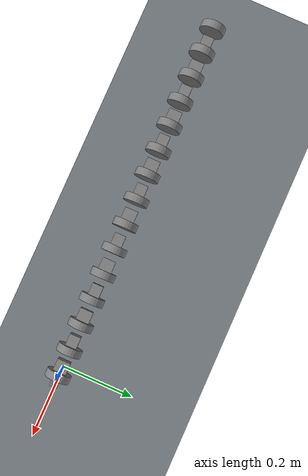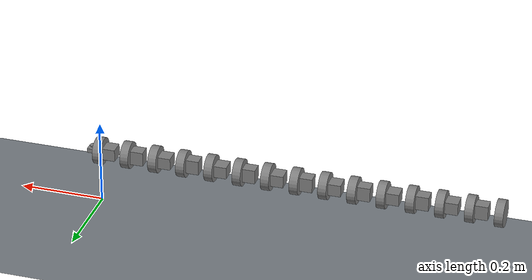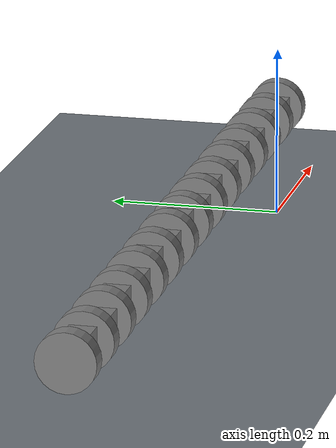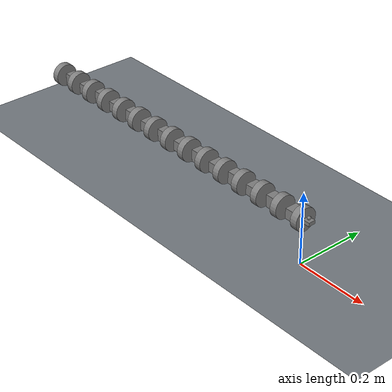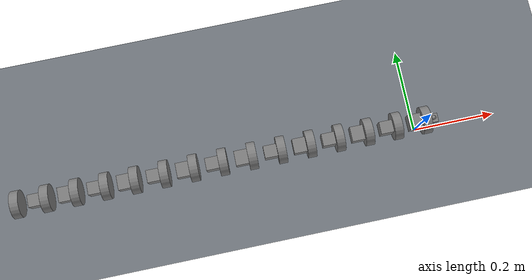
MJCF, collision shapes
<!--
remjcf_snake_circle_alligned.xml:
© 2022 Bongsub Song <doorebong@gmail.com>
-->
<mujoco model="snake_scene_v1">
    <option timestep="0.005"/>
    <size memory="100M"/>

    <include file="remjcf_snake_circle_alligned.xml"/>

    <asset>
        <texture type="skybox" builtin="gradient" rgb1=".3 .5 .7" rgb2="0 0 0" width="512" height="512"/>
        <texture name="body" type="cube" builtin="flat" mark="cross" width="128" height="128"
                 rgb1="0.8 0.6 0.4" rgb2="0.8 0.6 0.4" markrgb="1 1 1" random="0.01"/>
        <material name="body" texture="body" texuniform="true" rgba="0.8 0.6 .4 1"/>
        <texture name="grid" type="2d" builtin="checker" width="512" height="512" rgb1=".1 .2 .3" rgb2=".2 .3 .4"/>
        <material name="grid" texture="grid" texrepeat="1 1" texuniform="true" reflectance=".2"/>
        <texture type="2d" name="groundplane" builtin="checker" mark="edge" rgb1="0.2 0.3 0.4" rgb2="0.1 0.2 0.3" markrgb="0.8 0.8 0.8" width="300" height="300"/>
        <texture name="texplane" type="2d" builtin="checker" rgb1=".8 .8 .8" rgb2=".1 0.15 0.2" width="512" height="512" mark="cross" markrgb=".8 .8 .8"/>
        <texture name="texgeom" type="cube" builtin="flat" mark="cross" width="127" height="1278" rgb1="0.8 0.6 0.4" rgb2="0.8 0.6 0.4" markrgb="1 1 1" random="0.01"/>
        <material name="matplane" reflectance="0.3" texture="texplane" texrepeat="2 2" texuniform="true"/>
        <material name="matgeom" texture="texgeom" texuniform="true" rgba="0.8 0.6 .4 1"/>
        <hfield name="terrain" ncol="201" nrow="201" size="30 30 5 .1"/>
    </asset>

      <worldbody>
        <!-- Flat plane -->
        <geom name="floor" pos="0 0 0" size="0 0 .25" type="plane" material="matplane" condim="6" friction="0.5 0.1 0.01"/>
      </worldbody>
</mujoco>

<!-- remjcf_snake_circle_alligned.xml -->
<!-- All right reserved -->
<!-- Description : BRM snake robot Mujoco simulation xml and axis alligned version. -->
<!-- v20220830 : Circular frame version -->
<!-- v20221103 : Body Frame Alligned -->
<!-- v20240122 : mesh contact is convert to default shape -->

<mujoco model="horcrux">

    <asset>
        <mesh name="head_link" file="./asset/Head.stl"/>
        <mesh name="v_link" file="./asset/Link2.stl"/>
        <mesh name="h_link" file="./asset/Link3.stl"/>
        <mesh name="tail_link" file="./asset/Tail.stl"/>
    </asset>

    <default>
        <default class="joint_defaults">
            <joint type="hinge" pos="0.0388 0 0" limited="true" range="-75 75" damping="0.13" stiffness="0" armature="0.01" />
        </default>
        <default class="C-frame">
            <geom type="cylinder" mass="0.05" condim="6" size="0.0318 0.01" rgba="0.5 0.5 0.5 0.1" priority="1" friction="0.7 0.015 0.001" pos="0 0 0" euler="0 90 0"/>
        </default>
        <default class="H-link">
            <geom type="box" mass="0.1" condim="6" size="0.01425 0.017 0.02325" rgba="0.5 0.5 0.5 0.1" priority="1" friction="0.35 0.015 0.001" pos="-0.017 0 0" euler="0 90 0"/>
        </default>
        <default class="V-link">
            <geom type="box" mass="0.1" condim="6" size="0.01425 0.017 0.02325" rgba="0.5 0.5 0.5 0.1" priority="1" friction="0.35 0.015 0.001" pos="-0.017 0 0" euler="90 90 0"/>
        </default>
        <default class="Mesh-head">
            <geom type="mesh" mesh="head_link" mass="0" pos="-0.029 0 0" euler="180 0 0" contype="0" conaffinity="0" group="2" rgba="0.7 0.4 0.4 1"/>
        </default>
        <default class="Mesh-H-link">
            <geom type="mesh" mesh="h_link" mass="0" pos="-0.029 0 0" euler="180 0 0" contype="0" conaffinity="0" group="2" rgba="0.7 0.4 0.4 1"/>
        </default>
        <default class="Mesh-V-link">
            <geom type="mesh" mesh="v_link" mass="0" pos="-0.029 0 0" euler="0 0 0" contype="0" conaffinity="0" group="2" rgba="0.4 0.4 0.7 1"/>
        </default>
        <default class="Mesh-tail">
            <geom type="mesh" mesh="tail_link" mass="0" pos="0.001875 0 0" euler="0 0 0" contype="0" conaffinity="0" group="2" rgba="0.7 0.4 0.4 1"/>
        </default>
    </default>

    <worldbody>
        <light directional="false" diffuse="1 1 1" specular="0 0 0" pos="0 0 15" dir="0 0 -1" castshadow="false"/>

        <!-- Celing camera -->
        <body>
            <camera name="ceiling" mode="fixed" fovy="90" pos="0 0 2.5" euler="0 0 0"/>
        </body>

        <body name="head" pos="0 0 0.1318" euler="0 0 0">
            <camera name="head_mount" mode="fixed" fovy="120" pos="0.02 0 0.0" euler="0 -90 -90"/>
            <geom type="box" mass="0.01" condim="6" size="0.03 0.01 0.005"/>
            <site name="s_head" pos="0.02 0 0.01" euler="0 0 0"/>
            <freejoint name="root"/>
            <geom class="Mesh-head"/>
            <geom name="c-head" class="C-frame"/>
            <geom class="H-link"/>
            <body name="link1" pos="-0.0678 0 0" euler="0 0 0">
                <joint class="joint_defaults" name="joint1" axis="0 1 0"/>
                <geom class="Mesh-V-link"/>
                <geom name="c-link1" class="C-frame"/>
                <geom class="V-link"/>
                <body name="link2" pos="-0.0678 0 0" euler="0 0 0">
                    <joint class="joint_defaults" name="joint2" axis="0 0 1"/>
                    <geom class="Mesh-H-link"/>
                    <geom name="c-link2" class="C-frame"/>
                    <geom class="H-link"/>
                    <body name="link3" pos="-0.0678 0 0" euler="0 0 0">
                        <joint class="joint_defaults" name="joint3" axis="0 1 0"/>
                        <geom class="Mesh-V-link"/>
                        <geom name="c-link3" class="C-frame"/>
                        <geom class="V-link"/>
                        <body name="link4" pos="-0.0678 0 0" euler="0 0 0">
                            <joint class="joint_defaults" name="joint4" axis="0 0 1"/>
                            <geom class="Mesh-H-link"/>
                            <geom name="c-link4" class="C-frame"/>
                            <geom class="H-link"/>
                            <body name="link5" pos="-0.0678 0 0" euler="0 0 0">
                                <joint class="joint_defaults" name="joint5" axis="0 1 0"/>
                                <geom class="Mesh-V-link"/>
                                <geom name="c-link5" class="C-frame"/>
                                <geom class="V-link"/>
                                <body name="link6" pos="-0.0678 0 0" euler="0 0 0">
                                    <joint class="joint_defaults" name="joint6" axis="0 0 1"/>
                                    <geom class="Mesh-H-link"/>
                                    <geom name="c-link6" class="C-frame"/>
                                    <geom class="H-link"/>
                                    <body name="link7" pos="-0.0678 0 0" euler="0 0 0">
                                        <joint class="joint_defaults" name="joint7" axis="0 1 0"/>
                                        <geom class="Mesh-V-link"/>
                                        <geom name="c-link7" class="C-frame"/>
                                        <geom class="V-link"/>
                                        <body name="link8" pos="-0.0678 0 0" euler="0 0 0">
                                            <joint class="joint_defaults" name="joint8" axis="0 0 1"/>
                                            <geom class="Mesh-H-link"/>
                                            <geom name="c-link8" class="C-frame"/>
                                            <geom class="H-link"/>
                                            <body name="link9" pos="-0.0678 0 0" euler="0 0 0">
                                                <joint class="joint_defaults" name="joint9" axis="0 1 0"/>
                                                <geom class="Mesh-V-link"/>
                                                <geom name="c-link9" class="C-frame"/>
                                                <geom class="V-link"/>
                                                <body name="link10" pos="-0.0678 0 0" euler="0 0 0">
                                                    <joint class="joint_defaults" name="joint10" axis="0 0 1"/>
                                                    <geom class="Mesh-H-link"/>
                                                    <geom name="c-link10" class="C-frame"/>
                                                    <geom class="H-link"/>
                                                    <body name="link11" pos="-0.0678 0 0" euler="0 0 0">
                                                        <joint class="joint_defaults" name="joint11" axis="0 1 0"/>
                                                        <geom class="Mesh-V-link"/>
                                                        <geom name="c-link11" class="C-frame"/>
                                                        <geom class="V-link"/>
                                                        <body name="link12" pos="-0.0678 0 0" euler="0 0 0">
                                                            <joint class="joint_defaults" name="joint12" axis="0 0 1"/>
                                                            <geom class="Mesh-H-link"/>
                                                            <geom name="c-link12" class="C-frame"/>
                                                            <geom class="H-link"/>
                                                            <body name="link13" pos="-0.0678 0 0" euler="0 0 0">
                                                                <joint class="joint_defaults" name="joint13" axis="0 1 0"/>
                                                                <geom class="Mesh-V-link"/>
                                                                <geom name="c-link13" class="C-frame"/>
                                                                <geom class="V-link"/>
                                                                <body name="tail" pos="-0.0678 0 0" euler="0 0 0">
                                                                    <joint class="joint_defaults" name="joint14" axis="0 0 1"/>
                                                                    <geom class="Mesh-tail"/>
                                                                    <geom name="c-tail" class="C-frame"/>
                                                                </body>
                                                            </body>
                                                        </body>
                                                    </body>
                                                </body>
                                            </body>
                                        </body>
                                    </body>
                                </body>
                            </body>
                        </body>
                    </body>
                </body>
            </body>
            <body>
                <camera name="com" mode="trackcom" fovy="45" pos="-1.8 0 1.8" euler="0 -45 -90"/>
            </body>
        </body>
    </worldbody>

    <!-- Motor -->
    <actuator>
        <motor name="servo_1"  ctrllimited="true" ctrlrange="-3.5 3.5" gear="1" joint="joint1"/>
        <motor name="servo_2"  ctrllimited="true" ctrlrange="-3.5 3.5" gear="1" joint="joint2"/>
        <motor name="servo_3"  ctrllimited="true" ctrlrange="-3.5 3.5" gear="1" joint="joint3"/>
        <motor name="servo_4"  ctrllimited="true" ctrlrange="-3.5 3.5" gear="1" joint="joint4"/>
        <motor name="servo_5"  ctrllimited="true" ctrlrange="-3.5 3.5" gear="1" joint="joint5"/>
        <motor name="servo_6"  ctrllimited="true" ctrlrange="-3.5 3.5" gear="1" joint="joint6"/>
        <motor name="servo_7"  ctrllimited="true" ctrlrange="-3.5 3.5" gear="1" joint="joint7"/>
        <motor name="servo_8"  ctrllimited="true" ctrlrange="-3.5 3.5" gear="1" joint="joint8"/>
        <motor name="servo_9"  ctrllimited="true" ctrlrange="-3.5 3.5" gear="1" joint="joint9"/>
        <motor name="servo_10" ctrllimited="true" ctrlrange="-3.5 3.5" gear="1" joint="joint10"/>
        <motor name="servo_11" ctrllimited="true" ctrlrange="-3.5 3.5" gear="1" joint="joint11"/>
        <motor name="servo_12" ctrllimited="true" ctrlrange="-3.5 3.5" gear="1" joint="joint12"/>
        <motor name="servo_13" ctrllimited="true" ctrlrange="-3.5 3.5" gear="1" joint="joint13"/>
        <motor name="servo_14" ctrllimited="true" ctrlrange="-3.5 3.5" gear="1" joint="joint14"/>
    </actuator>

    <!-- Servo -->
    <sensor>
        <jointpos name="pos_joint1"  joint="joint1" />
        <jointpos name="pos_joint2"  joint="joint2" />
        <jointpos name="pos_joint3"  joint="joint3" />
        <jointpos name="pos_joint4"  joint="joint4" />
        <jointpos name="pos_joint5"  joint="joint5" />
        <jointpos name="pos_joint6"  joint="joint6" />
        <jointpos name="pos_joint7"  joint="joint7" />
        <jointpos name="pos_joint8"  joint="joint8" />
        <jointpos name="pos_joint9"  joint="joint9" />
        <jointpos name="pos_joint10" joint="joint10"/>
        <jointpos name="pos_joint11" joint="joint11"/>
        <jointpos name="pos_joint12" joint="joint12"/>
        <jointpos name="pos_joint13" joint="joint13"/>
        <jointpos name="pos_joint14" joint="joint14"/>

        <jointvel name="vel_joint1"  joint="joint1" />
        <jointvel name="vel_joint2"  joint="joint2" />
        <jointvel name="vel_joint3"  joint="joint3" />
        <jointvel name="vel_joint4"  joint="joint4" />
        <jointvel name="vel_joint5"  joint="joint5" />
        <jointvel name="vel_joint6"  joint="joint6" />
        <jointvel name="vel_joint7"  joint="joint7" />
        <jointvel name="vel_joint8"  joint="joint8" />
        <jointvel name="vel_joint9"  joint="joint9" />
        <jointvel name="vel_joint10" joint="joint10"/>
        <jointvel name="vel_joint11" joint="joint11"/>
        <jointvel name="vel_joint12" joint="joint12"/>
        <jointvel name="vel_joint13" joint="joint13"/>
        <jointvel name="vel_joint14" joint="joint14"/>

        <framequat name="head_quat" objtype="site" objname="s_head"/>
        <gyro name="head_angvel" site="s_head"/>
        <accelerometer name="head_linacc" site="s_head"/>

    </sensor>

</mujoco>
